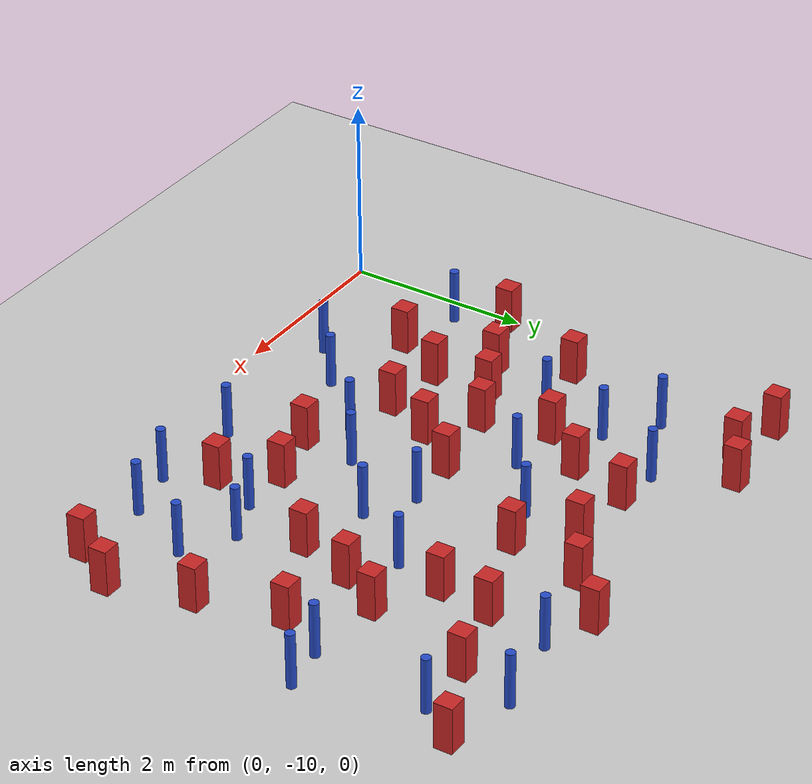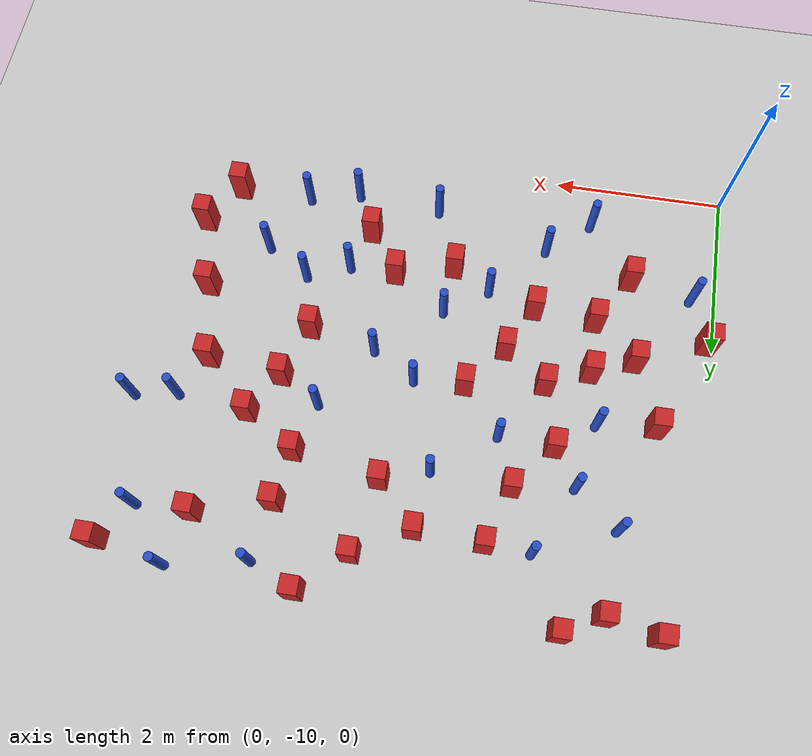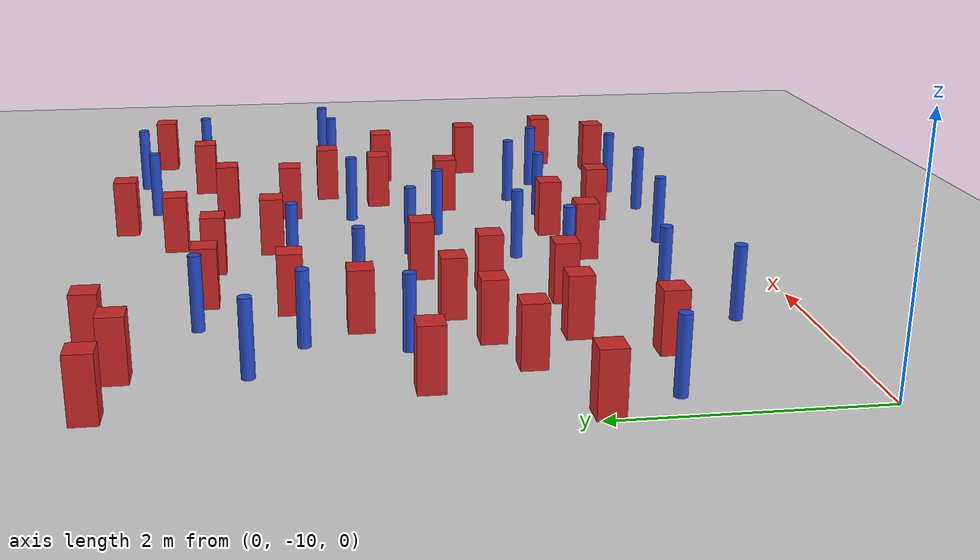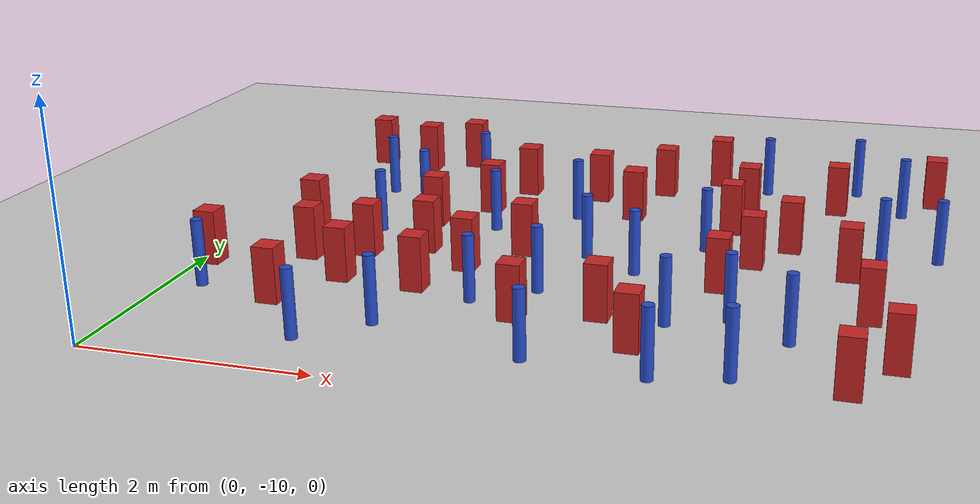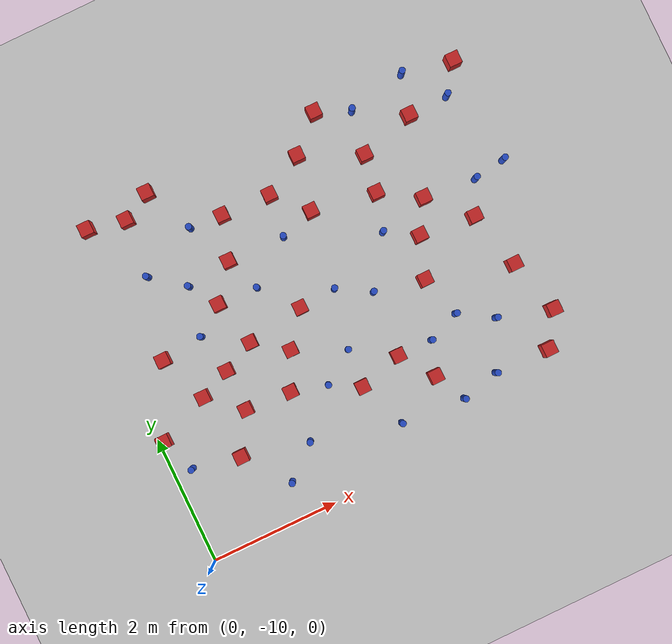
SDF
<sdf version="1.6">
 <world name="default">
  <model name="ground_plane">
   <static>1</static>
   <link name="link">
    <collision name="collision">
     <geometry><plane><normal>0 0 1</normal><size>100 100</size></plane></geometry>
     <surface><friction><ode><mu>100</mu><mu2>50</mu2></ode></friction></surface>
    </collision>
    <visual name="visual">
     <cast_shadows>0</cast_shadows>
     <geometry><plane><normal>0 0 1</normal><size>100 100</size></plane></geometry>
     <material>
      <ambient>1.0 1.0 1.0 1.0</ambient>
      <diffuse>0.8 0.8 0.8 1.0</diffuse>
      <specular>0.01 0.01 0.01 1.000000</specular>
     </material>
    </visual>
   </link>
  </model>
  <model name="square_post_obstacle2">
   <static>true</static>
   <pose>3.0949802499 -5.43575693258 1.91545236811e-07 -7.35059704564e-06 1.12565212e-07 2.39332434364e-05</pose>
   <link name="link">
    <pose>0 0 0.25 0 -0 0</pose>
    <inertial>
     <mass>100</mass>
     <inertia>
      <ixx>0.166667</ixx>
      <ixy>0</ixy>
      <ixz>0</ixz>
      <iyy>0.166667</iyy>
      <iyz>0</iyz>
      <izz>0.166667</izz>
     </inertia>
    </inertial>
    <collision name="collision"><geometry><box><size>.2 .2 .5</size></box></geometry></collision>
    <visual name="visual">
     <geometry><box><size>.2 .2 .5</size></box></geometry>
     <material>
      <script><name>Gazebo/Red</name><uri>file://media/materials/scripts/gazebo.material</uri></script>
     </material>
    </visual>
   </link>
  </model>
  <model name="square_post_obstacle10">
   <static>true</static>
   <pose>5.14205474478 -6.46462236844 1.91545236811e-07 -7.35059704564e-06 1.12565212e-07 2.39332434364e-05</pose>
   <link name="link">
    <pose>0 0 0.25 0 -0 0</pose>
    <inertial>
     <mass>100</mass>
     <inertia>
      <ixx>0.166667</ixx>
      <ixy>0</ixy>
      <ixz>0</ixz>
      <iyy>0.166667</iyy>
      <iyz>0</iyz>
      <izz>0.166667</izz>
     </inertia>
    </inertial>
    <collision name="collision"><geometry><box><size>.2 .2 .5</size></box></geometry></collision>
    <visual name="visual">
     <geometry><box><size>.2 .2 .5</size></box></geometry>
     <material>
      <script><name>Gazebo/Red</name><uri>file://media/materials/scripts/gazebo.material</uri></script>
     </material>
    </visual>
   </link>
  </model>
  <model name="pole_obstacle10">
   <static>true</static>
   <pose>1.42459915182 -6.14395877449 7.38925637345e-09 -8.47170692799e-08 1.24976765033e-08 -1.74513093018e-07</pose>
   <link name="link">
    <pose>0 0 0.3 0 -0 0</pose>
    <inertial>
     <mass>1</mass>
     <inertia><ixx>0.145833</ixx><ixy>0</ixy><ixz>0</ixz><iyy>0.145833</iyy><iyz>0</iyz><izz>0.125</izz></inertia>
    </inertial>
    <collision name="collision">
     <geometry><cylinder><radius>0.05</radius><length>.6</length></cylinder></geometry>
    </collision>
    <visual name="visual">
     <geometry><cylinder><radius>0.05</radius><length>.6</length></cylinder></geometry>
     <material>
      <script><name>Gazebo/Blue</name><uri>file://media/materials/scripts/gazebo.material</uri></script>
     </material>
    </visual>
   </link>
  </model>
  <model name="pole_obstacle25">
   <static>true</static>
   <pose>4.39637110971 -9.42218067346 7.38925637345e-09 -8.471706928e-08 1.24976765081e-08 -1.74513093015e-07</pose>
   <link name="link">
    <pose>0 0 0.3 0 -0 0</pose>
    <inertial>
     <mass>1</mass>
     <inertia><ixx>0.145833</ixx><ixy>0</ixy><ixz>0</ixz><iyy>0.145833</iyy><iyz>0</iyz><izz>0.125</izz></inertia>
    </inertial>
    <collision name="collision">
     <geometry><cylinder><radius>0.05</radius><length>.6</length></cylinder></geometry>
    </collision>
    <visual name="visual">
     <geometry><cylinder><radius>0.05</radius><length>.6</length></cylinder></geometry>
     <material>
      <script><name>Gazebo/Blue</name><uri>file://media/materials/scripts/gazebo.material</uri></script>
     </material>
    </visual>
   </link>
  </model>
  <model name="pole_obstacle26">
   <static>true</static>
   <pose>1.26426336441 -6.89721934044 7.38925637345e-09 -8.47170692799e-08 1.24976765033e-08 -1.74513093018e-07</pose>
   <link name="link">
    <pose>0 0 0.3 0 -0 0</pose>
    <inertial>
     <mass>1</mass>
     <inertia><ixx>0.145833</ixx><ixy>0</ixy><ixz>0</ixz><iyy>0.145833</iyy><iyz>0</iyz><izz>0.125</izz></inertia>
    </inertial>
    <collision name="collision">
     <geometry><cylinder><radius>0.05</radius><length>.6</length></cylinder></geometry>
    </collision>
    <visual name="visual">
     <geometry><cylinder><radius>0.05</radius><length>.6</length></cylinder></geometry>
     <material>
      <script><name>Gazebo/Blue</name><uri>file://media/materials/scripts/gazebo.material</uri></script>
     </material>
    </visual>
   </link>
  </model>
  <model name="pole_obstacle29">
   <static>true</static>
   <pose>3.36265435322 -7.11291917463 7.38925637345e-09 -8.47170692798e-08 1.24976765033e-08 -1.74513093019e-07</pose>
   <link name="link">
    <pose>0 0 0.3 0 -0 0</pose>
    <inertial>
     <mass>1</mass>
     <inertia><ixx>0.145833</ixx><ixy>0</ixy><ixz>0</ixz><iyy>0.145833</iyy><iyz>0</iyz><izz>0.125</izz></inertia>
    </inertial>
    <collision name="collision">
     <geometry><cylinder><radius>0.05</radius><length>.6</length></cylinder></geometry>
    </collision>
    <visual name="visual">
     <geometry><cylinder><radius>0.05</radius><length>.6</length></cylinder></geometry>
     <material>
      <script><name>Gazebo/Blue</name><uri>file://media/materials/scripts/gazebo.material</uri></script>
     </material>
    </visual>
   </link>
  </model>
  <model name="pole_obstacle34">
   <static>true</static>
   <pose>1.55352257194 -9.43023254134 7.38925637345e-09 -8.47170692798e-08 1.24976764881e-08 -1.74513093027e-07</pose>
   <link name="link">
    <pose>0 0 0.3 0 -0 0</pose>
    <inertial>
     <mass>1</mass>
     <inertia><ixx>0.145833</ixx><ixy>0</ixy><ixz>0</ixz><iyy>0.145833</iyy><iyz>0</iyz><izz>0.125</izz></inertia>
    </inertial>
    <collision name="collision">
     <geometry><cylinder><radius>0.05</radius><length>.6</length></cylinder></geometry>
    </collision>
    <visual name="visual">
     <geometry><cylinder><radius>0.05</radius><length>.6</length></cylinder></geometry>
     <material>
      <script><name>Gazebo/Blue</name><uri>file://media/materials/scripts/gazebo.material</uri></script>
     </material>
    </visual>
   </link>
  </model>
  <model name="pole_obstacle45">
   <static>true</static>
   <pose>4.33398476444 -8.42729301618 7.38925637345e-09 -8.471706928e-08 1.24976765081e-08 -1.74513093015e-07</pose>
   <link name="link">
    <pose>0 0 0.3 0 -0 0</pose>
    <inertial>
     <mass>1</mass>
     <inertia><ixx>0.145833</ixx><ixy>0</ixy><ixz>0</ixz><iyy>0.145833</iyy><iyz>0</iyz><izz>0.125</izz></inertia>
    </inertial>
    <collision name="collision">
     <geometry><cylinder><radius>0.05</radius><length>.6</length></cylinder></geometry>
    </collision>
    <visual name="visual">
     <geometry><cylinder><radius>0.05</radius><length>.6</length></cylinder></geometry>
     <material>
      <script><name>Gazebo/Blue</name><uri>file://media/materials/scripts/gazebo.material</uri></script>
     </material>
    </visual>
   </link>
  </model>
  <model name="square_post_obstacle49">
   <static>true</static>
   <pose>4.22348359257 -4.61324119609 1.91545236811e-07 -7.35059704564e-06 1.12565212e-07 2.39332434364e-05</pose>
   <link name="link">
    <pose>0 0 0.25 0 -0 0</pose>
    <inertial>
     <mass>100</mass>
     <inertia>
      <ixx>0.166667</ixx>
      <ixy>0</ixy>
      <ixz>0</ixz>
      <iyy>0.166667</iyy>
      <iyz>0</iyz>
      <izz>0.166667</izz>
     </inertia>
    </inertial>
    <collision name="collision"><geometry><box><size>.2 .2 .5</size></box></geometry></collision>
    <visual name="visual">
     <geometry><box><size>.2 .2 .5</size></box></geometry>
     <material>
      <script><name>Gazebo/Red</name><uri>file://media/materials/scripts/gazebo.material</uri></script>
     </material>
    </visual>
   </link>
  </model>
  <model name="square_post_obstacle57">
   <static>true</static>
   <pose>1.01087903177 -4.85073947621 1.91545236811e-07 -7.35059704564e-06 1.12565212e-07 2.39332434364e-05</pose>
   <link name="link">
    <pose>0 0 0.25 0 -0 0</pose>
    <inertial>
     <mass>100</mass>
     <inertia>
      <ixx>0.166667</ixx>
      <ixy>0</ixy>
      <ixz>0</ixz>
      <iyy>0.166667</iyy>
      <iyz>0</iyz>
      <izz>0.166667</izz>
     </inertia>
    </inertial>
    <collision name="collision"><geometry><box><size>.2 .2 .5</size></box></geometry></collision>
    <visual name="visual">
     <geometry><box><size>.2 .2 .5</size></box></geometry>
     <material>
      <script><name>Gazebo/Red</name><uri>file://media/materials/scripts/gazebo.material</uri></script>
     </material>
    </visual>
   </link>
  </model>
  <model name="square_post_obstacle58">
   <static>true</static>
   <pose>1.38880696634 -7.5175477544 1.91545236811e-07 -7.35059704564e-06 1.12565212e-07 2.39332434364e-05</pose>
   <link name="link">
    <pose>0 0 0.25 0 -0 0</pose>
    <inertial>
     <mass>100</mass>
     <inertia>
      <ixx>0.166667</ixx>
      <ixy>0</ixy>
      <ixz>0</ixz>
      <iyy>0.166667</iyy>
      <iyz>0</iyz>
      <izz>0.166667</izz>
     </inertia>
    </inertial>
    <collision name="collision"><geometry><box><size>.2 .2 .5</size></box></geometry></collision>
    <visual name="visual">
     <geometry><box><size>.2 .2 .5</size></box></geometry>
     <material>
      <script><name>Gazebo/Red</name><uri>file://media/materials/scripts/gazebo.material</uri></script>
     </material>
    </visual>
   </link>
  </model>
  <model name="square_post_obstacle63">
   <static>true</static>
   <pose>3.54826460039 -5.91992180861 1.91545236811e-07 -7.35059704564e-06 1.12565212e-07 2.39332434364e-05</pose>
   <link name="link">
    <pose>0 0 0.25 0 -0 0</pose>
    <inertial>
     <mass>100</mass>
     <inertia>
      <ixx>0.166667</ixx>
      <ixy>0</ixy>
      <ixz>0</ixz>
      <iyy>0.166667</iyy>
      <iyz>0</iyz>
      <izz>0.166667</izz>
     </inertia>
    </inertial>
    <collision name="collision"><geometry><box><size>.2 .2 .5</size></box></geometry></collision>
    <visual name="visual">
     <geometry><box><size>.2 .2 .5</size></box></geometry>
     <material>
      <script><name>Gazebo/Red</name><uri>file://media/materials/scripts/gazebo.material</uri></script>
     </material>
    </visual>
   </link>
  </model>
  <model name="square_post_obstacle65">
   <static>true</static>
   <pose>3.78336911461 -8.41792272162 1.91545236811e-07 -7.35059704564e-06 1.12565212e-07 2.39332434364e-05</pose>
   <link name="link">
    <pose>0 0 0.25 0 -0 0</pose>
    <inertial>
     <mass>100</mass>
     <inertia>
      <ixx>0.166667</ixx>
      <ixy>0</ixy>
      <ixz>0</ixz>
      <iyy>0.166667</iyy>
      <iyz>0</iyz>
      <izz>0.166667</izz>
     </inertia>
    </inertial>
    <collision name="collision"><geometry><box><size>.2 .2 .5</size></box></geometry></collision>
    <visual name="visual">
     <geometry><box><size>.2 .2 .5</size></box></geometry>
     <material>
      <script><name>Gazebo/Red</name><uri>file://media/materials/scripts/gazebo.material</uri></script>
     </material>
    </visual>
   </link>
  </model>
  <model name="square_post_obstacle66">
   <static>true</static>
   <pose>1.0357514334 -8.75890266817 1.91545236811e-07 -7.35059704564e-06 1.12565212e-07 2.39332434364e-05</pose>
   <link name="link">
    <pose>0 0 0.25 0 -0 0</pose>
    <inertial>
     <mass>100</mass>
     <inertia>
      <ixx>0.166667</ixx>
      <ixy>0</ixy>
      <ixz>0</ixz>
      <iyy>0.166667</iyy>
      <iyz>0</iyz>
      <izz>0.166667</izz>
     </inertia>
    </inertial>
    <collision name="collision"><geometry><box><size>.2 .2 .5</size></box></geometry></collision>
    <visual name="visual">
     <geometry><box><size>.2 .2 .5</size></box></geometry>
     <material>
      <script><name>Gazebo/Red</name><uri>file://media/materials/scripts/gazebo.material</uri></script>
     </material>
    </visual>
   </link>
  </model>
  <model name="square_post_obstacle72">
   <static>true</static>
   <pose>1.88515252701 -7.28772171864 1.91545236811e-07 -7.35059704564e-06 1.12565212e-07 2.39332434364e-05</pose>
   <link name="link">
    <pose>0 0 0.25 0 -0 0</pose>
    <inertial>
     <mass>100</mass>
     <inertia>
      <ixx>0.166667</ixx>
      <ixy>0</ixy>
      <ixz>0</ixz>
      <iyy>0.166667</iyy>
      <iyz>0</iyz>
      <izz>0.166667</izz>
     </inertia>
    </inertial>
    <collision name="collision"><geometry><box><size>.2 .2 .5</size></box></geometry></collision>
    <visual name="visual">
     <geometry><box><size>.2 .2 .5</size></box></geometry>
     <material>
      <script><name>Gazebo/Red</name><uri>file://media/materials/scripts/gazebo.material</uri></script>
     </material>
    </visual>
   </link>
  </model>
  <model name="pole_obstacle71">
   <static>true</static>
   <pose>2.66010086639 -8.36164038407 7.38925637345e-09 -8.47170692793e-08 1.24976764408e-08 -1.74513093041e-07</pose>
   <link name="link">
    <pose>0 0 0.3 0 -0 0</pose>
    <inertial>
     <mass>1</mass>
     <inertia><ixx>0.145833</ixx><ixy>0</ixy><ixz>0</ixz><iyy>0.145833</iyy><iyz>0</iyz><izz>0.125</izz></inertia>
    </inertial>
    <collision name="collision">
     <geometry><cylinder><radius>0.05</radius><length>.6</length></cylinder></geometry>
    </collision>
    <visual name="visual">
     <geometry><cylinder><radius>0.05</radius><length>.6</length></cylinder></geometry>
     <material>
      <script><name>Gazebo/Blue</name><uri>file://media/materials/scripts/gazebo.material</uri></script>
     </material>
    </visual>
   </link>
  </model>
  <model name="square_post_obstacle76">
   <static>true</static>
   <pose>1.39970000695 -8.1584104265 1.91545236811e-07 -7.35059704564e-06 1.12565212e-07 2.39332434364e-05</pose>
   <link name="link">
    <pose>0 0 0.25 0 -0 0</pose>
    <inertial>
     <mass>100</mass>
     <inertia>
      <ixx>0.166667</ixx>
      <ixy>0</ixy>
      <ixz>0</ixz>
      <iyy>0.166667</iyy>
      <iyz>0</iyz>
      <izz>0.166667</izz>
     </inertia>
    </inertial>
    <collision name="collision"><geometry><box><size>.2 .2 .5</size></box></geometry></collision>
    <visual name="visual">
     <geometry><box><size>.2 .2 .5</size></box></geometry>
     <material>
      <script><name>Gazebo/Red</name><uri>file://media/materials/scripts/gazebo.material</uri></script>
     </material>
    </visual>
   </link>
  </model>
  <model name="pole_obstacle73">
   <static>true</static>
   <pose>3.01275752136 -6.08886436792 7.38925637345e-09 -8.47170692798e-08 1.24976765033e-08 -1.74513093019e-07</pose>
   <link name="link">
    <pose>0 0 0.3 0 -0 0</pose>
    <inertial>
     <mass>1</mass>
     <inertia><ixx>0.145833</ixx><ixy>0</ixy><ixz>0</ixz><iyy>0.145833</iyy><iyz>0</iyz><izz>0.125</izz></inertia>
    </inertial>
    <collision name="collision">
     <geometry><cylinder><radius>0.05</radius><length>.6</length></cylinder></geometry>
    </collision>
    <visual name="visual">
     <geometry><cylinder><radius>0.05</radius><length>.6</length></cylinder></geometry>
     <material>
      <script><name>Gazebo/Blue</name><uri>file://media/materials/scripts/gazebo.material</uri></script>
     </material>
    </visual>
   </link>
  </model>
  <model name="pole_obstacle76">
   <static>true</static>
   <pose>4.74667555947 -4.83272827735 7.38925637345e-09 -8.47170692796e-08 1.24976764786e-08 -1.74513093032e-07</pose>
   <link name="link">
    <pose>0 0 0.3 0 -0 0</pose>
    <inertial>
     <mass>1</mass>
     <inertia><ixx>0.145833</ixx><ixy>0</ixy><ixz>0</ixz><iyy>0.145833</iyy><iyz>0</iyz><izz>0.125</izz></inertia>
    </inertial>
    <collision name="collision">
     <geometry><cylinder><radius>0.05</radius><length>.6</length></cylinder></geometry>
    </collision>
    <visual name="visual">
     <geometry><cylinder><radius>0.05</radius><length>.6</length></cylinder></geometry>
     <material>
      <script><name>Gazebo/Blue</name><uri>file://media/materials/scripts/gazebo.material</uri></script>
     </material>
    </visual>
   </link>
  </model>
  <model name="pole_obstacle78">
   <static>true</static>
   <pose>1.8158244975 -5.3648206932 7.38925637345e-09 -8.47170692799e-08 1.24976765033e-08 -1.74513093018e-07</pose>
   <link name="link">
    <pose>0 0 0.3 0 -0 0</pose>
    <inertial>
     <mass>1</mass>
     <inertia><ixx>0.145833</ixx><ixy>0</ixy><ixz>0</ixz><iyy>0.145833</iyy><iyz>0</iyz><izz>0.125</izz></inertia>
    </inertial>
    <collision name="collision">
     <geometry><cylinder><radius>0.05</radius><length>.6</length></cylinder></geometry>
    </collision>
    <visual name="visual">
     <geometry><cylinder><radius>0.05</radius><length>.6</length></cylinder></geometry>
     <material>
      <script><name>Gazebo/Blue</name><uri>file://media/materials/scripts/gazebo.material</uri></script>
     </material>
    </visual>
   </link>
  </model>
  <model name="pole_obstacle79">
   <static>true</static>
   <pose>0.930131605165 -5.74885850974 7.38925637345e-09 -8.471706928e-08 1.24976765086e-08 -1.74513093015e-07</pose>
   <link name="link">
    <pose>0 0 0.3 0 -0 0</pose>
    <inertial>
     <mass>1</mass>
     <inertia><ixx>0.145833</ixx><ixy>0</ixy><ixz>0</ixz><iyy>0.145833</iyy><iyz>0</iyz><izz>0.125</izz></inertia>
    </inertial>
    <collision name="collision">
     <geometry><cylinder><radius>0.05</radius><length>.6</length></cylinder></geometry>
    </collision>
    <visual name="visual">
     <geometry><cylinder><radius>0.05</radius><length>.6</length></cylinder></geometry>
     <material>
      <script><name>Gazebo/Blue</name><uri>file://media/materials/scripts/gazebo.material</uri></script>
     </material>
    </visual>
   </link>
  </model>
  <model name="pole_obstacle80">
   <static>true</static>
   <pose>0.300215378569 -8.61033234547 7.38925637345e-09 -8.47170692796e-08 1.24976764724e-08 -1.74513093036e-07</pose>
   <link name="link">
    <pose>0 0 0.3 0 -0 0</pose>
    <inertial>
     <mass>1</mass>
     <inertia><ixx>0.145833</ixx><ixy>0</ixy><ixz>0</ixz><iyy>0.145833</iyy><iyz>0</iyz><izz>0.125</izz></inertia>
    </inertial>
    <collision name="collision">
     <geometry><cylinder><radius>0.05</radius><length>.6</length></cylinder></geometry>
    </collision>
    <visual name="visual">
     <geometry><cylinder><radius>0.05</radius><length>.6</length></cylinder></geometry>
     <material>
      <script><name>Gazebo/Blue</name><uri>file://media/materials/scripts/gazebo.material</uri></script>
     </material>
    </visual>
   </link>
  </model>
  <model name="pole_obstacle82">
   <static>true</static>
   <pose>4.98760250756 -9.28034326388 7.38925637345e-09 -8.471706928e-08 1.24976765081e-08 -1.74513093015e-07</pose>
   <link name="link">
    <pose>0 0 0.3 0 -0 0</pose>
    <inertial>
     <mass>1</mass>
     <inertia><ixx>0.145833</ixx><ixy>0</ixy><ixz>0</ixz><iyy>0.145833</iyy><iyz>0</iyz><izz>0.125</izz></inertia>
    </inertial>
    <collision name="collision">
     <geometry><cylinder><radius>0.05</radius><length>.6</length></cylinder></geometry>
    </collision>
    <visual name="visual">
     <geometry><cylinder><radius>0.05</radius><length>.6</length></cylinder></geometry>
     <material>
      <script><name>Gazebo/Blue</name><uri>file://media/materials/scripts/gazebo.material</uri></script>
     </material>
    </visual>
   </link>
  </model>
  <model name="pole_obstacle93">
   <static>true</static>
   <pose>5.34126819799 -8.5443962346 7.38925637345e-09 -8.471706928e-08 1.24976765081e-08 -1.74513093015e-07</pose>
   <link name="link">
    <pose>0 0 0.3 0 -0 0</pose>
    <inertial>
     <mass>1</mass>
     <inertia><ixx>0.145833</ixx><ixy>0</ixy><ixz>0</ixz><iyy>0.145833</iyy><iyz>0</iyz><izz>0.125</izz></inertia>
    </inertial>
    <collision name="collision">
     <geometry><cylinder><radius>0.05</radius><length>.6</length></cylinder></geometry>
    </collision>
    <visual name="visual">
     <geometry><cylinder><radius>0.05</radius><length>.6</length></cylinder></geometry>
     <material>
      <script><name>Gazebo/Blue</name><uri>file://media/materials/scripts/gazebo.material</uri></script>
     </material>
    </visual>
   </link>
  </model>
  <model name="square_post_obstacle83">
   <static>true</static>
   <pose>4.63092217658 -5.50765069884 1.91545236811e-07 -7.35059704564e-06 1.12565212e-07 2.39332434364e-05</pose>
   <link name="link">
    <pose>0 0 0.25 0 -0 0</pose>
    <inertial>
     <mass>100</mass>
     <inertia>
      <ixx>0.166667</ixx>
      <ixy>0</ixy>
      <ixz>0</ixz>
      <iyy>0.166667</iyy>
      <iyz>0</iyz>
      <izz>0.166667</izz>
     </inertia>
    </inertial>
    <collision name="collision"><geometry><box><size>.2 .2 .5</size></box></geometry></collision>
    <visual name="visual">
     <geometry><box><size>.2 .2 .5</size></box></geometry>
     <material>
      <script><name>Gazebo/Red</name><uri>file://media/materials/scripts/gazebo.material</uri></script>
     </material>
    </visual>
   </link>
  </model>
  <model name="square_post_obstacle84">
   <static>true</static>
   <pose>5.83674867015 -9.29695657548 1.91545236811e-07 -7.35059704564e-06 1.12565212e-07 2.39332434364e-05</pose>
   <link name="link">
    <pose>0 0 0.25 0 -0 0</pose>
    <inertial>
     <mass>100</mass>
     <inertia>
      <ixx>0.166667</ixx>
      <ixy>0</ixy>
      <ixz>0</ixz>
      <iyy>0.166667</iyy>
      <iyz>0</iyz>
      <izz>0.166667</izz>
     </inertia>
    </inertial>
    <collision name="collision"><geometry><box><size>.2 .2 .5</size></box></geometry></collision>
    <visual name="visual">
     <geometry><box><size>.2 .2 .5</size></box></geometry>
     <material>
      <script><name>Gazebo/Red</name><uri>file://media/materials/scripts/gazebo.material</uri></script>
     </material>
    </visual>
   </link>
  </model>
  <model name="square_post_obstacle89">
   <static>true</static>
   <pose>2.77939321353 -7.14564625248 1.91545236811e-07 -7.35059704564e-06 1.12565212e-07 2.39332434364e-05</pose>
   <link name="link">
    <pose>0 0 0.25 0 -0 0</pose>
    <inertial>
     <mass>100</mass>
     <inertia>
      <ixx>0.166667</ixx>
      <ixy>0</ixy>
      <ixz>0</ixz>
      <iyy>0.166667</iyy>
      <iyz>0</iyz>
      <izz>0.166667</izz>
     </inertia>
    </inertial>
    <collision name="collision"><geometry><box><size>.2 .2 .5</size></box></geometry></collision>
    <visual name="visual">
     <geometry><box><size>.2 .2 .5</size></box></geometry>
     <material>
      <script><name>Gazebo/Red</name><uri>file://media/materials/scripts/gazebo.material</uri></script>
     </material>
    </visual>
   </link>
  </model>
  <model name="square_post_obstacle91">
   <static>true</static>
   <pose>2.1122686241 -8.20818644392 1.91545236811e-07 -7.35059704564e-06 1.12565212e-07 2.39332434364e-05</pose>
   <link name="link">
    <pose>0 0 0.25 0 -0 0</pose>
    <inertial>
     <mass>100</mass>
     <inertia>
      <ixx>0.166667</ixx>
      <ixy>0</ixy>
      <ixz>0</ixz>
      <iyy>0.166667</iyy>
      <iyz>0</iyz>
      <izz>0.166667</izz>
     </inertia>
    </inertial>
    <collision name="collision"><geometry><box><size>.2 .2 .5</size></box></geometry></collision>
    <visual name="visual">
     <geometry><box><size>.2 .2 .5</size></box></geometry>
     <material>
      <script><name>Gazebo/Red</name><uri>file://media/materials/scripts/gazebo.material</uri></script>
     </material>
    </visual>
   </link>
  </model>
  <model name="pole_obstacle110">
   <static>true</static>
   <pose>5.96784936227 -6.54412490008 7.38925637345e-09 -8.47170692796e-08 1.24976764786e-08 -1.74513093032e-07</pose>
   <link name="link">
    <pose>0 0 0.3 0 -0 0</pose>
    <inertial>
     <mass>1</mass>
     <inertia><ixx>0.145833</ixx><ixy>0</ixy><ixz>0</ixz><iyy>0.145833</iyy><iyz>0</iyz><izz>0.125</izz></inertia>
    </inertial>
    <collision name="collision">
     <geometry><cylinder><radius>0.05</radius><length>.6</length></cylinder></geometry>
    </collision>
    <visual name="visual">
     <geometry><cylinder><radius>0.05</radius><length>.6</length></cylinder></geometry>
     <material>
      <script><name>Gazebo/Blue</name><uri>file://media/materials/scripts/gazebo.material</uri></script>
     </material>
    </visual>
   </link>
  </model>
  <model name="square_post_obstacle99">
   <static>true</static>
   <pose>4.15160304473 -8.93442625195 1.91545236811e-07 -7.35059704564e-06 1.12565212e-07 2.39332434364e-05</pose>
   <link name="link">
    <pose>0 0 0.25 0 -0 0</pose>
    <inertial>
     <mass>100</mass>
     <inertia>
      <ixx>0.166667</ixx>
      <ixy>0</ixy>
      <ixz>0</ixz>
      <iyy>0.166667</iyy>
      <iyz>0</iyz>
      <izz>0.166667</izz>
     </inertia>
    </inertial>
    <collision name="collision"><geometry><box><size>.2 .2 .5</size></box></geometry></collision>
    <visual name="visual">
     <geometry><box><size>.2 .2 .5</size></box></geometry>
     <material>
      <script><name>Gazebo/Red</name><uri>file://media/materials/scripts/gazebo.material</uri></script>
     </material>
    </visual>
   </link>
  </model>
  <model name="square_post_obstacle113">
   <static>true</static>
   <pose>0.421865785145 -4.72626425933 1.91545236811e-07 -7.35059704564e-06 1.12565212e-07 2.39332434364e-05</pose>
   <link name="link">
    <pose>0 0 0.25 0 -0 0</pose>
    <inertial>
     <mass>100</mass>
     <inertia>
      <ixx>0.166667</ixx>
      <ixy>0</ixy>
      <ixz>0</ixz>
      <iyy>0.166667</iyy>
      <iyz>0</iyz>
      <izz>0.166667</izz>
     </inertia>
    </inertial>
    <collision name="collision"><geometry><box><size>.2 .2 .5</size></box></geometry></collision>
    <visual name="visual">
     <geometry><box><size>.2 .2 .5</size></box></geometry>
     <material>
      <script><name>Gazebo/Red</name><uri>file://media/materials/scripts/gazebo.material</uri></script>
     </material>
    </visual>
   </link>
  </model>
  <model name="square_post_obstacle117">
   <static>true</static>
   <pose>4.54080003065 -6.09303091024 1.91545236811e-07 -7.35059704564e-06 1.12565212e-07 2.39332434364e-05</pose>
   <link name="link">
    <pose>0 0 0.25 0 -0 0</pose>
    <inertial>
     <mass>100</mass>
     <inertia>
      <ixx>0.166667</ixx>
      <ixy>0</ixy>
      <ixz>0</ixz>
      <iyy>0.166667</iyy>
      <iyz>0</iyz>
      <izz>0.166667</izz>
     </inertia>
    </inertial>
    <collision name="collision"><geometry><box><size>.2 .2 .5</size></box></geometry></collision>
    <visual name="visual">
     <geometry><box><size>.2 .2 .5</size></box></geometry>
     <material>
      <script><name>Gazebo/Red</name><uri>file://media/materials/scripts/gazebo.material</uri></script>
     </material>
    </visual>
   </link>
  </model>
  <model name="pole_obstacle136">
   <static>true</static>
   <pose>2.32871663246 -6.60151916553 7.38925637345e-09 -8.47170692798e-08 1.24976765033e-08 -1.74513093019e-07</pose>
   <link name="link">
    <pose>0 0 0.3 0 -0 0</pose>
    <inertial>
     <mass>1</mass>
     <inertia><ixx>0.145833</ixx><ixy>0</ixy><ixz>0</ixz><iyy>0.145833</iyy><iyz>0</iyz><izz>0.125</izz></inertia>
    </inertial>
    <collision name="collision">
     <geometry><cylinder><radius>0.05</radius><length>.6</length></cylinder></geometry>
    </collision>
    <visual name="visual">
     <geometry><cylinder><radius>0.05</radius><length>.6</length></cylinder></geometry>
     <material>
      <script><name>Gazebo/Blue</name><uri>file://media/materials/scripts/gazebo.material</uri></script>
     </material>
    </visual>
   </link>
  </model>
  <model name="pole_obstacle141">
   <static>true</static>
   <pose>6.462923472 -6.46608180128 7.38925637345e-09 -8.47170692796e-08 1.24976764786e-08 -1.74513093032e-07</pose>
   <link name="link">
    <pose>0 0 0.3 0 -0 0</pose>
    <inertial>
     <mass>1</mass>
     <inertia><ixx>0.145833</ixx><ixy>0</ixy><ixz>0</ixz><iyy>0.145833</iyy><iyz>0</iyz><izz>0.125</izz></inertia>
    </inertial>
    <collision name="collision">
     <geometry><cylinder><radius>0.05</radius><length>.6</length></cylinder></geometry>
    </collision>
    <visual name="visual">
     <geometry><cylinder><radius>0.05</radius><length>.6</length></cylinder></geometry>
     <material>
      <script><name>Gazebo/Blue</name><uri>file://media/materials/scripts/gazebo.material</uri></script>
     </material>
    </visual>
   </link>
  </model>
  <model name="square_post_obstacle128">
   <static>true</static>
   <pose>3.10650889377 -8.60576856617 1.91545236811e-07 -7.35059704564e-06 1.12565212e-07 2.39332434364e-05</pose>
   <link name="link">
    <pose>0 0 0.25 0 -0 0</pose>
    <inertial>
     <mass>100</mass>
     <inertia>
      <ixx>0.166667</ixx>
      <ixy>0</ixy>
      <ixz>0</ixz>
      <iyy>0.166667</iyy>
      <iyz>0</iyz>
      <izz>0.166667</izz>
     </inertia>
    </inertial>
    <collision name="collision"><geometry><box><size>.2 .2 .5</size></box></geometry></collision>
    <visual name="visual">
     <geometry><box><size>.2 .2 .5</size></box></geometry>
     <material>
      <script><name>Gazebo/Red</name><uri>file://media/materials/scripts/gazebo.material</uri></script>
     </material>
    </visual>
   </link>
  </model>
  <model name="pole_obstacle144">
   <static>true</static>
   <pose>6.11672895725 -5.24510683592 7.38925637345e-09 -8.47170692796e-08 1.24976764786e-08 -1.74513093032e-07</pose>
   <link name="link">
    <pose>0 0 0.3 0 -0 0</pose>
    <inertial>
     <mass>1</mass>
     <inertia><ixx>0.145833</ixx><ixy>0</ixy><ixz>0</ixz><iyy>0.145833</iyy><iyz>0</iyz><izz>0.125</izz></inertia>
    </inertial>
    <collision name="collision">
     <geometry><cylinder><radius>0.05</radius><length>.6</length></cylinder></geometry>
    </collision>
    <visual name="visual">
     <geometry><cylinder><radius>0.05</radius><length>.6</length></cylinder></geometry>
     <material>
      <script><name>Gazebo/Blue</name><uri>file://media/materials/scripts/gazebo.material</uri></script>
     </material>
    </visual>
   </link>
  </model>
  <model name="square_post_obstacle134">
   <static>true</static>
   <pose>5.92688078393 -7.93634643864 1.91545236811e-07 -7.35059704564e-06 1.12565212e-07 2.39332434364e-05</pose>
   <link name="link">
    <pose>0 0 0.25 0 -0 0</pose>
    <inertial>
     <mass>100</mass>
     <inertia>
      <ixx>0.166667</ixx>
      <ixy>0</ixy>
      <ixz>0</ixz>
      <iyy>0.166667</iyy>
      <iyz>0</iyz>
      <izz>0.166667</izz>
     </inertia>
    </inertial>
    <collision name="collision"><geometry><box><size>.2 .2 .5</size></box></geometry></collision>
    <visual name="visual">
     <geometry><box><size>.2 .2 .5</size></box></geometry>
     <material>
      <script><name>Gazebo/Red</name><uri>file://media/materials/scripts/gazebo.material</uri></script>
     </material>
    </visual>
   </link>
  </model>
  <model name="square_post_obstacle144">
   <static>true</static>
   <pose>4.84844121114 -6.94570943309 1.91545236811e-07 -7.35059704564e-06 1.12565212e-07 2.39332434364e-05</pose>
   <link name="link">
    <pose>0 0 0.25 0 -0 0</pose>
    <inertial>
     <mass>100</mass>
     <inertia>
      <ixx>0.166667</ixx>
      <ixy>0</ixy>
      <ixz>0</ixz>
      <iyy>0.166667</iyy>
      <iyz>0</iyz>
      <izz>0.166667</izz>
     </inertia>
    </inertial>
    <collision name="collision"><geometry><box><size>.2 .2 .5</size></box></geometry></collision>
    <visual name="visual">
     <geometry><box><size>.2 .2 .5</size></box></geometry>
     <material>
      <script><name>Gazebo/Red</name><uri>file://media/materials/scripts/gazebo.material</uri></script>
     </material>
    </visual>
   </link>
  </model>
  <model name="square_post_obstacle148">
   <static>true</static>
   <pose>0.606340408686 -6.96897053494 1.91545236811e-07 -7.35059704564e-06 1.12565212e-07 2.39332434364e-05</pose>
   <link name="link">
    <pose>0 0 0.25 0 -0 0</pose>
    <inertial>
     <mass>100</mass>
     <inertia>
      <ixx>0.166667</ixx>
      <ixy>0</ixy>
      <ixz>0</ixz>
      <iyy>0.166667</iyy>
      <iyz>0</iyz>
      <izz>0.166667</izz>
     </inertia>
    </inertial>
    <collision name="collision"><geometry><box><size>.2 .2 .5</size></box></geometry></collision>
    <visual name="visual">
     <geometry><box><size>.2 .2 .5</size></box></geometry>
     <material>
      <script><name>Gazebo/Red</name><uri>file://media/materials/scripts/gazebo.material</uri></script>
     </material>
    </visual>
   </link>
  </model>
  <model name="square_post_obstacle152">
   <static>true</static>
   <pose>1.45726924439 -4.61642141948 1.91545236811e-07 -7.35059704564e-06 1.12565212e-07 2.39332434364e-05</pose>
   <link name="link">
    <pose>0 0 0.25 0 -0 0</pose>
    <inertial>
     <mass>100</mass>
     <inertia>
      <ixx>0.166667</ixx>
      <ixy>0</ixy>
      <ixz>0</ixz>
      <iyy>0.166667</iyy>
      <iyz>0</iyz>
      <izz>0.166667</izz>
     </inertia>
    </inertial>
    <collision name="collision"><geometry><box><size>.2 .2 .5</size></box></geometry></collision>
    <visual name="visual">
     <geometry><box><size>.2 .2 .5</size></box></geometry>
     <material>
      <script><name>Gazebo/Red</name><uri>file://media/materials/scripts/gazebo.material</uri></script>
     </material>
    </visual>
   </link>
  </model>
  <model name="square_post_obstacle162">
   <static>true</static>
   <pose>6.16138275384 -8.79142594299 1.91545236811e-07 -7.35059704564e-06 1.12565212e-07 2.39332434364e-05</pose>
   <link name="link">
    <pose>0 0 0.25 0 -0 0</pose>
    <inertial>
     <mass>100</mass>
     <inertia>
      <ixx>0.166667</ixx>
      <ixy>0</ixy>
      <ixz>0</ixz>
      <iyy>0.166667</iyy>
      <iyz>0</iyz>
      <izz>0.166667</izz>
     </inertia>
    </inertial>
    <collision name="collision"><geometry><box><size>.2 .2 .5</size></box></geometry></collision>
    <visual name="visual">
     <geometry><box><size>.2 .2 .5</size></box></geometry>
     <material>
      <script><name>Gazebo/Red</name><uri>file://media/materials/scripts/gazebo.material</uri></script>
     </material>
    </visual>
   </link>
  </model>
  <model name="pole_obstacle175">
   <static>true</static>
   <pose>2.05304252369 -9.00396859372 7.38925637345e-09 -8.47170692793e-08 1.24976764408e-08 -1.74513093041e-07</pose>
   <link name="link">
    <pose>0 0 0.3 0 -0 0</pose>
    <inertial>
     <mass>1</mass>
     <inertia><ixx>0.145833</ixx><ixy>0</ixy><ixz>0</ixz><iyy>0.145833</iyy><iyz>0</iyz><izz>0.125</izz></inertia>
    </inertial>
    <collision name="collision">
     <geometry><cylinder><radius>0.05</radius><length>.6</length></cylinder></geometry>
    </collision>
    <visual name="visual">
     <geometry><cylinder><radius>0.05</radius><length>.6</length></cylinder></geometry>
     <material>
      <script><name>Gazebo/Blue</name><uri>file://media/materials/scripts/gazebo.material</uri></script>
     </material>
    </visual>
   </link>
  </model>
  <model name="pole_obstacle179">
   <static>true</static>
   <pose>4.82797462584 -8.22692796436 7.38925637345e-09 -8.471706928e-08 1.24976765081e-08 -1.74513093015e-07</pose>
   <link name="link">
    <pose>0 0 0.3 0 -0 0</pose>
    <inertial>
     <mass>1</mass>
     <inertia><ixx>0.145833</ixx><ixy>0</ixy><ixz>0</ixz><iyy>0.145833</iyy><iyz>0</iyz><izz>0.125</izz></inertia>
    </inertial>
    <collision name="collision">
     <geometry><cylinder><radius>0.05</radius><length>.6</length></cylinder></geometry>
    </collision>
    <visual name="visual">
     <geometry><cylinder><radius>0.05</radius><length>.6</length></cylinder></geometry>
     <material>
      <script><name>Gazebo/Blue</name><uri>file://media/materials/scripts/gazebo.material</uri></script>
     </material>
    </visual>
   </link>
  </model>
  <model name="square_post_obstacle171">
   <static>true</static>
   <pose>3.71530005151 -5.08542143536 1.91545236811e-07 -7.35059704564e-06 1.12565212e-07 2.39332434364e-05</pose>
   <link name="link">
    <pose>0 0 0.25 0 -0 0</pose>
    <inertial>
     <mass>100</mass>
     <inertia>
      <ixx>0.166667</ixx>
      <ixy>0</ixy>
      <ixz>0</ixz>
      <iyy>0.166667</iyy>
      <iyz>0</iyz>
      <izz>0.166667</izz>
     </inertia>
    </inertial>
    <collision name="collision"><geometry><box><size>.2 .2 .5</size></box></geometry></collision>
    <visual name="visual">
     <geometry><box><size>.2 .2 .5</size></box></geometry>
     <material>
      <script><name>Gazebo/Red</name><uri>file://media/materials/scripts/gazebo.material</uri></script>
     </material>
    </visual>
   </link>
  </model>
  <model name="pole_obstacle184">
   <static>true</static>
   <pose>3.40210439919 -9.34657491575 7.38925637345e-09 -8.47170692793e-08 1.24976764408e-08 -1.74513093041e-07</pose>
   <link name="link">
    <pose>0 0 0.3 0 -0 0</pose>
    <inertial>
     <mass>1</mass>
     <inertia><ixx>0.145833</ixx><ixy>0</ixy><ixz>0</ixz><iyy>0.145833</iyy><iyz>0</iyz><izz>0.125</izz></inertia>
    </inertial>
    <collision name="collision">
     <geometry><cylinder><radius>0.05</radius><length>.6</length></cylinder></geometry>
    </collision>
    <visual name="visual">
     <geometry><cylinder><radius>0.05</radius><length>.6</length></cylinder></geometry>
     <material>
      <script><name>Gazebo/Blue</name><uri>file://media/materials/scripts/gazebo.material</uri></script>
     </material>
    </visual>
   </link>
  </model>
  <model name="square_post_obstacle173">
   <static>true</static>
   <pose>2.38071364222 -7.65076406908 1.91545236811e-07 -7.35059704564e-06 1.12565212e-07 2.39332434364e-05</pose>
   <link name="link">
    <pose>0 0 0.25 0 -0 0</pose>
    <inertial>
     <mass>100</mass>
     <inertia>
      <ixx>0.166667</ixx>
      <ixy>0</ixy>
      <ixz>0</ixz>
      <iyy>0.166667</iyy>
      <iyz>0</iyz>
      <izz>0.166667</izz>
     </inertia>
    </inertial>
    <collision name="collision"><geometry><box><size>.2 .2 .5</size></box></geometry></collision>
    <visual name="visual">
     <geometry><box><size>.2 .2 .5</size></box></geometry>
     <material>
      <script><name>Gazebo/Red</name><uri>file://media/materials/scripts/gazebo.material</uri></script>
     </material>
    </visual>
   </link>
  </model>
  <model name="square_post_obstacle174">
   <static>true</static>
   <pose>2.11892660401 -6.05766628141 1.91545236811e-07 -7.35059704564e-06 1.12565212e-07 2.39332434364e-05</pose>
   <link name="link">
    <pose>0 0 0.25 0 -0 0</pose>
    <inertial>
     <mass>100</mass>
     <inertia>
      <ixx>0.166667</ixx>
      <ixy>0</ixy>
      <ixz>0</ixz>
      <iyy>0.166667</iyy>
      <iyz>0</iyz>
      <izz>0.166667</izz>
     </inertia>
    </inertial>
    <collision name="collision"><geometry><box><size>.2 .2 .5</size></box></geometry></collision>
    <visual name="visual">
     <geometry><box><size>.2 .2 .5</size></box></geometry>
     <material>
      <script><name>Gazebo/Red</name><uri>file://media/materials/scripts/gazebo.material</uri></script>
     </material>
    </visual>
   </link>
  </model>
  <model name="pole_obstacle191">
   <static>true</static>
   <pose>4.37988209369 -6.6631964892 7.38925637345e-09 -8.47170692796e-08 1.24976764786e-08 -1.74513093032e-07</pose>
   <link name="link">
    <pose>0 0 0.3 0 -0 0</pose>
    <inertial>
     <mass>1</mass>
     <inertia><ixx>0.145833</ixx><ixy>0</ixy><ixz>0</ixz><iyy>0.145833</iyy><iyz>0</iyz><izz>0.125</izz></inertia>
    </inertial>
    <collision name="collision">
     <geometry><cylinder><radius>0.05</radius><length>.6</length></cylinder></geometry>
    </collision>
    <visual name="visual">
     <geometry><cylinder><radius>0.05</radius><length>.6</length></cylinder></geometry>
     <material>
      <script><name>Gazebo/Blue</name><uri>file://media/materials/scripts/gazebo.material</uri></script>
     </material>
    </visual>
   </link>
  </model>
  <model name="square_post_obstacle184">
   <static>true</static>
   <pose>5.48246811554 -5.26420910672 1.91545236811e-07 -7.35059704564e-06 1.12565212e-07 2.39332434364e-05</pose>
   <link name="link">
    <pose>0 0 0.25 0 -0 0</pose>
    <inertial>
     <mass>100</mass>
     <inertia>
      <ixx>0.166667</ixx>
      <ixy>0</ixy>
      <ixz>0</ixz>
      <iyy>0.166667</iyy>
      <iyz>0</iyz>
      <izz>0.166667</izz>
     </inertia>
    </inertial>
    <collision name="collision"><geometry><box><size>.2 .2 .5</size></box></geometry></collision>
    <visual name="visual">
     <geometry><box><size>.2 .2 .5</size></box></geometry>
     <material>
      <script><name>Gazebo/Red</name><uri>file://media/materials/scripts/gazebo.material</uri></script>
     </material>
    </visual>
   </link>
  </model>
  <model name="pole_obstacle193">
   <static>true</static>
   <pose>5.65244281345 -4.65294742602 7.38925637345e-09 -8.47170692796e-08 1.24976764786e-08 -1.74513093032e-07</pose>
   <link name="link">
    <pose>0 0 0.3 0 -0 0</pose>
    <inertial>
     <mass>1</mass>
     <inertia><ixx>0.145833</ixx><ixy>0</ixy><ixz>0</ixz><iyy>0.145833</iyy><iyz>0</iyz><izz>0.125</izz></inertia>
    </inertial>
    <collision name="collision">
     <geometry><cylinder><radius>0.05</radius><length>.6</length></cylinder></geometry>
    </collision>
    <visual name="visual">
     <geometry><cylinder><radius>0.05</radius><length>.6</length></cylinder></geometry>
     <material>
      <script><name>Gazebo/Blue</name><uri>file://media/materials/scripts/gazebo.material</uri></script>
     </material>
    </visual>
   </link>
  </model>
  <model name="pole_obstacle199">
   <static>true</static>
   <pose>3.86546946697 -7.40879386769 7.38925637345e-09 -8.47170692798e-08 1.24976765033e-08 -1.74513093019e-07</pose>
   <link name="link">
    <pose>0 0 0.3 0 -0 0</pose>
    <inertial>
     <mass>1</mass>
     <inertia><ixx>0.145833</ixx><ixy>0</ixy><ixz>0</ixz><iyy>0.145833</iyy><iyz>0</iyz><izz>0.125</izz></inertia>
    </inertial>
    <collision name="collision">
     <geometry><cylinder><radius>0.05</radius><length>.6</length></cylinder></geometry>
    </collision>
    <visual name="visual">
     <geometry><cylinder><radius>0.05</radius><length>.6</length></cylinder></geometry>
     <material>
      <script><name>Gazebo/Blue</name><uri>file://media/materials/scripts/gazebo.material</uri></script>
     </material>
    </visual>
   </link>
  </model>
  <model name="pole_obstacle207">
   <static>true</static>
   <pose>3.15392075227 -8.0164956385 7.38925637345e-09 -8.47170692795e-08 1.24976764645e-08 -1.74513093041e-07</pose>
   <link name="link">
    <pose>0 0 0.3 0 -0 0</pose>
    <inertial>
     <mass>1</mass>
     <inertia><ixx>0.145833</ixx><ixy>0</ixy><ixz>0</ixz><iyy>0.145833</iyy><iyz>0</iyz><izz>0.125</izz></inertia>
    </inertial>
    <collision name="collision">
     <geometry><cylinder><radius>0.05</radius><length>.6</length></cylinder></geometry>
    </collision>
    <visual name="visual">
     <geometry><cylinder><radius>0.05</radius><length>.6</length></cylinder></geometry>
     <material>
      <script><name>Gazebo/Blue</name><uri>file://media/materials/scripts/gazebo.material</uri></script>
     </material>
    </visual>
   </link>
  </model>
  <model name="square_post_obstacle204">
   <static>true</static>
   <pose>6.42305062055 -4.81451218403 1.91545236811e-07 -7.35059704564e-06 1.12565212e-07 2.39332434364e-05</pose>
   <link name="link">
    <pose>0 0 0.25 0 -0 0</pose>
    <inertial>
     <mass>100</mass>
     <inertia>
      <ixx>0.166667</ixx>
      <ixy>0</ixy>
      <ixz>0</ixz>
      <iyy>0.166667</iyy>
      <iyz>0</iyz>
      <izz>0.166667</izz>
     </inertia>
    </inertial>
    <collision name="collision"><geometry><box><size>.2 .2 .5</size></box></geometry></collision>
    <visual name="visual">
     <geometry><box><size>.2 .2 .5</size></box></geometry>
     <material>
      <script><name>Gazebo/Red</name><uri>file://media/materials/scripts/gazebo.material</uri></script>
     </material>
    </visual>
   </link>
  </model>
  <model name="square_post_obstacle210">
   <static>true</static>
   <pose>4.6341152116 -7.57121876944 1.91545236811e-07 -7.35059704564e-06 1.12565212e-07 2.39332434364e-05</pose>
   <link name="link">
    <pose>0 0 0.25 0 -0 0</pose>
    <inertial>
     <mass>100</mass>
     <inertia>
      <ixx>0.166667</ixx>
      <ixy>0</ixy>
      <ixz>0</ixz>
      <iyy>0.166667</iyy>
      <iyz>0</iyz>
      <izz>0.166667</izz>
     </inertia>
    </inertial>
    <collision name="collision"><geometry><box><size>.2 .2 .5</size></box></geometry></collision>
    <visual name="visual">
     <geometry><box><size>.2 .2 .5</size></box></geometry>
     <material>
      <script><name>Gazebo/Red</name><uri>file://media/materials/scripts/gazebo.material</uri></script>
     </material>
    </visual>
   </link>
  </model>
  <model name="square_post_obstacle220">
   <static>true</static>
   <pose>0.905235142701 -7.72306913702 1.91545236811e-07 -7.35059704564e-06 1.12565212e-07 2.39332434364e-05</pose>
   <link name="link">
    <pose>0 0 0.25 0 -0 0</pose>
    <inertial>
     <mass>100</mass>
     <inertia>
      <ixx>0.166667</ixx>
      <ixy>0</ixy>
      <ixz>0</ixz>
      <iyy>0.166667</iyy>
      <iyz>0</iyz>
      <izz>0.166667</izz>
     </inertia>
    </inertial>
    <collision name="collision"><geometry><box><size>.2 .2 .5</size></box></geometry></collision>
    <visual name="visual">
     <geometry><box><size>.2 .2 .5</size></box></geometry>
     <material>
      <script><name>Gazebo/Red</name><uri>file://media/materials/scripts/gazebo.material</uri></script>
     </material>
    </visual>
   </link>
  </model>
  <model name="square_post_obstacle222">
   <static>true</static>
   <pose>1.70450838654 -6.57316505339 1.91545236811e-07 -7.35059704564e-06 1.12565212e-07 2.39332434364e-05</pose>
   <link name="link">
    <pose>0 0 0.25 0 -0 0</pose>
    <inertial>
     <mass>100</mass>
     <inertia>
      <ixx>0.166667</ixx>
      <ixy>0</ixy>
      <ixz>0</ixz>
      <iyy>0.166667</iyy>
      <iyz>0</iyz>
      <izz>0.166667</izz>
     </inertia>
    </inertial>
    <collision name="collision"><geometry><box><size>.2 .2 .5</size></box></geometry></collision>
    <visual name="visual">
     <geometry><box><size>.2 .2 .5</size></box></geometry>
     <material>
      <script><name>Gazebo/Red</name><uri>file://media/materials/scripts/gazebo.material</uri></script>
     </material>
    </visual>
   </link>
  </model>
  <model name="square_post_obstacle234">
   <static>true</static>
   <pose>5.7044099648 -7.04088001192 1.91545236811e-07 -7.35059704564e-06 1.12565212e-07 2.39332434364e-05</pose>
   <link name="link">
    <pose>0 0 0.25 0 -0 0</pose>
    <inertial>
     <mass>100</mass>
     <inertia>
      <ixx>0.166667</ixx>
      <ixy>0</ixy>
      <ixz>0</ixz>
      <iyy>0.166667</iyy>
      <iyz>0</iyz>
      <izz>0.166667</izz>
     </inertia>
    </inertial>
    <collision name="collision"><geometry><box><size>.2 .2 .5</size></box></geometry></collision>
    <visual name="visual">
     <geometry><box><size>.2 .2 .5</size></box></geometry>
     <material>
      <script><name>Gazebo/Red</name><uri>file://media/materials/scripts/gazebo.material</uri></script>
     </material>
    </visual>
   </link>
  </model>
  <model name="square_post_obstacle238">
   <static>true</static>
   <pose>0.0959709648047 -8.06536001192 1.91545236811e-07 -7.35059704564e-06 1.12565212e-07 2.39332434364e-05</pose>
   <link name="link">
    <pose>0 0 0.25 0 -0 0</pose>
    <inertial>
     <mass>100</mass>
     <inertia>
      <ixx>0.166667</ixx>
      <ixy>0</ixy>
      <ixz>0</ixz>
      <iyy>0.166667</iyy>
      <iyz>0</iyz>
      <izz>0.166667</izz>
     </inertia>
    </inertial>
    <collision name="collision"><geometry><box><size>.2 .2 .5</size></box></geometry></collision>
    <visual name="visual">
     <geometry><box><size>.2 .2 .5</size></box></geometry>
     <material>
      <script><name>Gazebo/Red</name><uri>file://media/materials/scripts/gazebo.material</uri></script>
     </material>
    </visual>
   </link>
  </model>
  <model name="square_post_obstacle241">
   <static>true</static>
   <pose>2.3272799648 -5.40452001192 1.91545236811e-07 -7.35059704564e-06 1.12565212e-07 2.39332434364e-05</pose>
   <link name="link">
    <pose>0 0 0.25 0 -0 0</pose>
    <inertial>
     <mass>100</mass>
     <inertia>
      <ixx>0.166667</ixx>
      <ixy>0</ixy>
      <ixz>0</ixz>
      <iyy>0.166667</iyy>
      <iyz>0</iyz>
      <izz>0.166667</izz>
     </inertia>
    </inertial>
    <collision name="collision"><geometry><box><size>.2 .2 .5</size></box></geometry></collision>
    <visual name="visual">
     <geometry><box><size>.2 .2 .5</size></box></geometry>
     <material>
      <script><name>Gazebo/Red</name><uri>file://media/materials/scripts/gazebo.material</uri></script>
     </material>
    </visual>
   </link>
  </model>
 </world>
</sdf>
